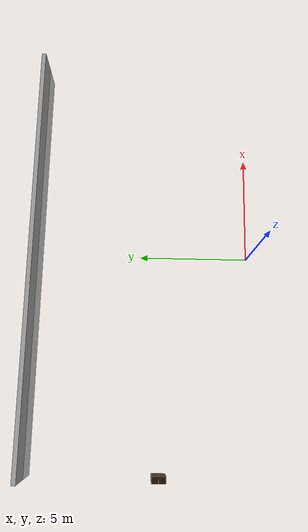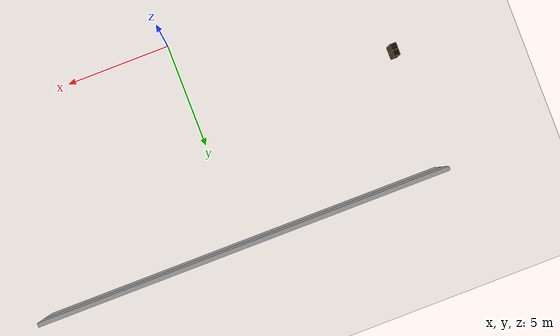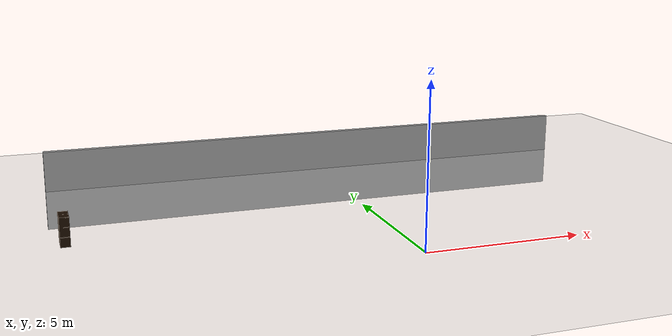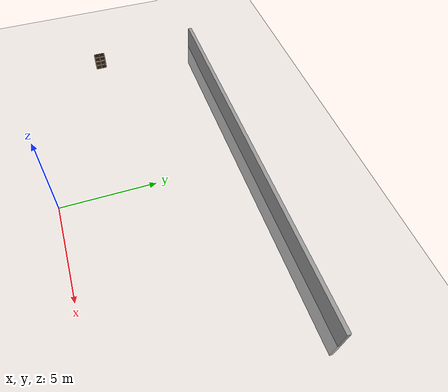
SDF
<sdf version="1.6">
 <world name="default">
  <model name="ground_plane">
   <static>1</static>
   <link name="link">
    <collision name="collision">
     <geometry><plane><normal>0 0 1</normal><size>100 100</size></plane></geometry>
     <surface><friction><ode><mu>100</mu><mu2>50</mu2></ode></friction></surface>
    </collision>
    <visual name="visual">
     <cast_shadows>0</cast_shadows>
     <geometry><plane><normal>0 0 1</normal><size>100 100</size></plane></geometry>
     <material>
      <script><uri>file://media/materials/scripts/gazebo.material</uri><name>Gazebo/Grey</name></script>
     </material>
    </visual>
   </link>
  </model>
  <model name="grey_wall_1">
   <link name="link">
    <inertial>
     <mass>1</mass>
     <inertia><ixx>1</ixx><ixy>0</ixy><ixz>0</ixz><iyy>1</iyy><iyz>0</iyz><izz>1</izz></inertia>
    </inertial>
    <visual name="visual">
     <cast_shadows>0</cast_shadows>
     <geometry><box><size>20 0.2 2.8</size></box></geometry>
     <material>
      <script>
       <uri>model://grey_wall/materials/scripts</uri>
       <uri>model://grey_wall/materials/textures</uri>
       <name>vrc/grey_wall</name>
      </script>
      <ambient>1 1 1 1</ambient>
      <diffuse>1 1 1 1</diffuse>
      <specular>0 0 0 1</specular>
      <emissive>0 0 0 1</emissive>
      <shader type="vertex"><normal_map>__default__</normal_map></shader>
     </material>
    </visual>
    <collision name="collision">
     <geometry><box><size>20 0.2 2.8</size></box></geometry>
     <surface>
      <friction>
       <ode><mu>1</mu><mu2>1</mu2><fdir1>0 0 0</fdir1><slip1>0</slip1><slip2>0</slip2></ode>
       <torsional>
        <coefficient>1</coefficient>
        <patch_radius>0</patch_radius>
        <surface_radius>0</surface_radius>
        <use_patch_radius>1</use_patch_radius>
        <ode><slip>0</slip></ode>
       </torsional>
      </friction>
      <bounce><restitution_coefficient>0</restitution_coefficient><threshold>1e+06</threshold></bounce>
      <contact>
       <collide_without_contact>0</collide_without_contact>
       <collide_without_contact_bitmask>1</collide_without_contact_bitmask>
       <collide_bitmask>1</collide_bitmask>
       <ode>
        <soft_cfm>0</soft_cfm>
        <soft_erp>0.2</soft_erp>
        <kp>1e+13</kp>
        <kd>1</kd>
        <max_vel>0.01</max_vel>
        <min_depth>0</min_depth>
       </ode>
       <bullet>
        <split_impulse>1</split_impulse>
        <split_impulse_penetration_threshold>-0.01</split_impulse_penetration_threshold>
        <soft_cfm>0</soft_cfm>
        <soft_erp>0.2</soft_erp>
        <kp>1e+13</kp>
        <kd>1</kd>
       </bullet>
      </contact>
     </surface>
    </collision>
   </link>
   <static>1</static>
   <pose>0 10 0 0 -0 0</pose>
  </model>
  <model name="6_Cube_StorageE_clone_clone">
   <link name="Wall_0">
    <pose>0 0 0.01 0 -0 0</pose>
    <inertial>
     <mass>1.6201</mass>
     <inertia><ixx>0.0119</ixx><iyy>0.0631</iyy><izz>0.0513</izz><ixy>0</ixy><ixz>0</ixz><iyz>0</iyz></inertia>
    </inertial>
    <collision name="Wall_0_Collision"><geometry><box><size>0.616 0.296 0.02</size></box></geometry></collision>
    <visual name="Wall_0_Visual">
     <geometry><box><size>0.616 0.296 0.02</size></box></geometry>
     <material>
      <script><uri>file://media/materials/scripts/gazebo.material</uri><name>Gazebo/Grey</name></script>
      <ambient>0.105882 0.0509804 0 1</ambient>
     </material>
    </visual>
   </link>
   <joint name="0_2" type="fixed">
    <pose>-0.308 0 0 0 -0 0</pose>
    <parent>Wall_2</parent>
    <child>Wall_0</child>
    <axis>
     <xyz>1 0 0</xyz>
     <use_parent_model_frame>0</use_parent_model_frame>
     <limit><lower>-1e+16</lower><upper>1e+16</upper></limit>
    </axis>
   </joint>
   <joint name="0_12" type="fixed">
    <parent>Wall_12</parent>
    <child>Wall_0</child>
    <axis>
     <xyz>0 0 1</xyz>
     <use_parent_model_frame>0</use_parent_model_frame>
     <limit><lower>-1e+16</lower><upper>1e+16</upper></limit>
    </axis>
   </joint>
   <joint name="0_4" type="fixed">
    <pose>0.308 0 0 0 -0 0</pose>
    <parent>Wall_4</parent>
    <child>Wall_0</child>
    <axis>
     <xyz>1 0 0</xyz>
     <use_parent_model_frame>0</use_parent_model_frame>
     <limit><lower>-1e+16</lower><upper>1e+16</upper></limit>
    </axis>
   </joint>
   <link name="Wall_10">
    <pose>0 0 0.61 0 -0 0</pose>
    <inertial>
     <mass>1.6201</mass>
     <inertia><ixx>0.0119</ixx><iyy>0.0631</iyy><izz>0.0513</izz><ixy>0</ixy><ixz>0</ixz><iyz>0</iyz></inertia>
    </inertial>
    <collision name="Wall_10_Collision"><geometry><box><size>0.616 0.296 0.02</size></box></geometry></collision>
    <visual name="Wall_10_Visual">
     <geometry><box><size>0.616 0.296 0.02</size></box></geometry>
     <material>
      <script><uri>file://media/materials/scripts/gazebo.material</uri><name>Gazebo/Grey</name></script>
      <ambient>0.105882 0.0509804 0 1</ambient>
     </material>
    </visual>
   </link>
   <joint name="10_2" type="fixed">
    <pose>-0.308 0 0 0 -0 0</pose>
    <parent>Wall_2</parent>
    <child>Wall_10</child>
    <axis>
     <xyz>1 0 0</xyz>
     <use_parent_model_frame>0</use_parent_model_frame>
     <limit><lower>-1e+16</lower><upper>1e+16</upper></limit>
    </axis>
   </joint>
   <joint name="10_12" type="fixed">
    <parent>Wall_12</parent>
    <child>Wall_10</child>
    <axis>
     <xyz>0 0 1</xyz>
     <use_parent_model_frame>0</use_parent_model_frame>
     <limit><lower>-1e+16</lower><upper>1e+16</upper></limit>
    </axis>
   </joint>
   <joint name="10_4" type="fixed">
    <pose>0.308 0 0 0 -0 0</pose>
    <parent>Wall_4</parent>
    <child>Wall_10</child>
    <axis>
     <xyz>1 0 0</xyz>
     <use_parent_model_frame>0</use_parent_model_frame>
     <limit><lower>-1e+16</lower><upper>1e+16</upper></limit>
    </axis>
   </joint>
   <link name="Wall_12">
    <pose>0 0 0.4575 0 -0 0</pose>
    <inertial>
     <mass>2.4065</mass>
     <inertia><ixx>0.0177</ixx><iyy>0.1855</iyy><izz>0.168</izz><ixy>0</ixy><ixz>0</ixz><iyz>0</iyz></inertia>
    </inertial>
    <collision name="Wall_12_Collision"><geometry><box><size>0.02 0.296 0.915</size></box></geometry></collision>
    <visual name="Wall_12_Visual">
     <geometry><box><size>0.02 0.296 0.915</size></box></geometry>
     <material>
      <script><uri>file://media/materials/scripts/gazebo.material</uri><name>Gazebo/Grey</name></script>
      <ambient>0.105882 0.0509804 0 1</ambient>
     </material>
    </visual>
   </link>
   <link name="Wall_2">
    <pose>-0.298 0 0.4575 0 -0 0</pose>
    <inertial>
     <mass>2.4065</mass>
     <inertia><ixx>0.0177</ixx><iyy>0.1855</iyy><izz>0.168</izz><ixy>0</ixy><ixz>0</ixz><iyz>0</iyz></inertia>
    </inertial>
    <collision name="Wall_2_Collision"><geometry><box><size>0.02 0.296 0.915</size></box></geometry></collision>
    <visual name="Wall_2_Visual">
     <geometry><box><size>0.02 0.296 0.915</size></box></geometry>
     <material>
      <script><uri>file://media/materials/scripts/gazebo.material</uri><name>Gazebo/Grey</name></script>
      <ambient>0.105882 0.0509804 0 1</ambient>
     </material>
    </visual>
   </link>
   <link name="Wall_4">
    <pose>0.298 0 0.4575 0 -0 0</pose>
    <inertial>
     <mass>2.4065</mass>
     <inertia><ixx>0.0177</ixx><iyy>0.1855</iyy><izz>0.168</izz><ixy>0</ixy><ixz>0</ixz><iyz>0</iyz></inertia>
    </inertial>
    <collision name="Wall_4_Collision"><geometry><box><size>0.02 0.296 0.915</size></box></geometry></collision>
    <visual name="Wall_4_Visual">
     <geometry><box><size>0.02 0.296 0.915</size></box></geometry>
     <material>
      <script><uri>file://media/materials/scripts/gazebo.material</uri><name>Gazebo/Grey</name></script>
      <ambient>0.105882 0.0509804 0 1</ambient>
     </material>
    </visual>
   </link>
   <link name="Wall_6">
    <pose>0 0 0.905 0 -0 0</pose>
    <inertial>
     <mass>1.6201</mass>
     <inertia><ixx>0.0119</ixx><iyy>0.0631</iyy><izz>0.0513</izz><ixy>0</ixy><ixz>0</ixz><iyz>0</iyz></inertia>
    </inertial>
    <collision name="Wall_6_Collision"><geometry><box><size>0.616 0.296 0.02</size></box></geometry></collision>
    <visual name="Wall_6_Visual">
     <geometry><box><size>0.616 0.296 0.02</size></box></geometry>
     <material>
      <script><uri>file://media/materials/scripts/gazebo.material</uri><name>Gazebo/Grey</name></script>
      <ambient>0.105882 0.0509804 0 1</ambient>
     </material>
    </visual>
   </link>
   <joint name="6_2" type="fixed">
    <pose>-0.308 0 0 0 -0 0</pose>
    <parent>Wall_2</parent>
    <child>Wall_6</child>
    <axis>
     <xyz>2 0 0</xyz>
     <use_parent_model_frame>0</use_parent_model_frame>
     <limit><lower>-1e+16</lower><upper>1e+16</upper></limit>
    </axis>
   </joint>
   <joint name="6_12" type="fixed">
    <parent>Wall_12</parent>
    <child>Wall_6</child>
    <axis>
     <xyz>0 0 1</xyz>
     <use_parent_model_frame>0</use_parent_model_frame>
     <limit><lower>-1e+16</lower><upper>1e+16</upper></limit>
    </axis>
   </joint>
   <joint name="6_4" type="fixed">
    <pose>0.308 0 0 0 -0 0</pose>
    <parent>Wall_4</parent>
    <child>Wall_6</child>
    <axis>
     <xyz>1 0 0</xyz>
     <use_parent_model_frame>0</use_parent_model_frame>
     <limit><lower>-1e+16</lower><upper>1e+16</upper></limit>
    </axis>
   </joint>
   <link name="Wall_8">
    <pose>0 0 0.305 0 -0 0</pose>
    <inertial>
     <mass>1.6201</mass>
     <inertia><ixx>0.0119</ixx><iyy>0.0631</iyy><izz>0.0513</izz><ixy>0</ixy><ixz>0</ixz><iyz>0</iyz></inertia>
    </inertial>
    <collision name="Wall_8_Collision"><geometry><box><size>0.616 0.296 0.02</size></box></geometry></collision>
    <visual name="Wall_8_Visual">
     <geometry><box><size>0.616 0.296 0.02</size></box></geometry>
     <material>
      <script><uri>file://media/materials/scripts/gazebo.material</uri><name>Gazebo/Grey</name></script>
      <ambient>0.105882 0.0509804 0 1</ambient>
     </material>
    </visual>
   </link>
   <joint name="8_2" type="fixed">
    <pose>-0.308 0 0 0 -0 0</pose>
    <parent>Wall_2</parent>
    <child>Wall_8</child>
    <axis>
     <xyz>1 0 0</xyz>
     <use_parent_model_frame>0</use_parent_model_frame>
     <limit><lower>-1e+16</lower><upper>1e+16</upper></limit>
    </axis>
   </joint>
   <joint name="8_12" type="fixed">
    <parent>Wall_12</parent>
    <child>Wall_8</child>
    <axis>
     <xyz>0 0 1</xyz>
     <use_parent_model_frame>0</use_parent_model_frame>
     <limit><lower>-1e+16</lower><upper>1e+16</upper></limit>
    </axis>
   </joint>
   <joint name="8_4" type="fixed">
    <pose>0.308 0 0 0 -0 0</pose>
    <parent>Wall_4</parent>
    <child>Wall_8</child>
    <axis>
     <xyz>1 0 0</xyz>
     <use_parent_model_frame>0</use_parent_model_frame>
     <limit><lower>-1e+16</lower><upper>1e+16</upper></limit>
    </axis>
   </joint>
   <static>1</static>
   <pose>-9.73006 4.03951 0 0 -0 1.5708</pose>
  </model>
 </world>
</sdf>
